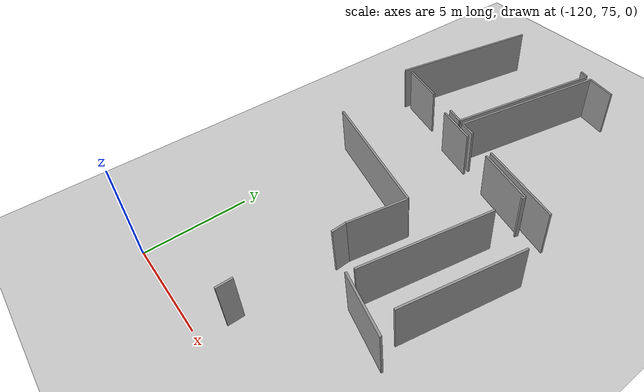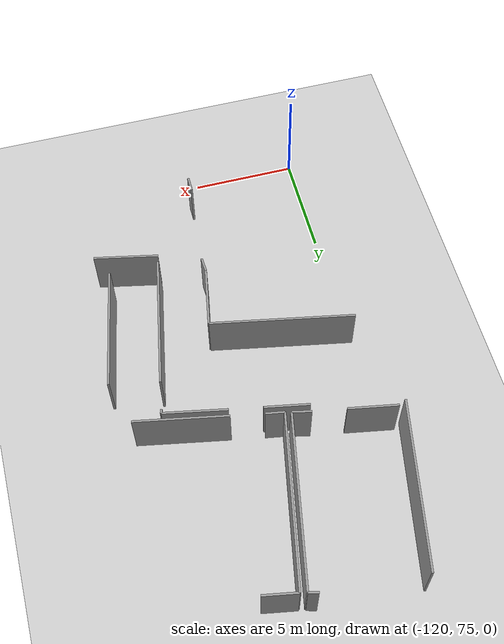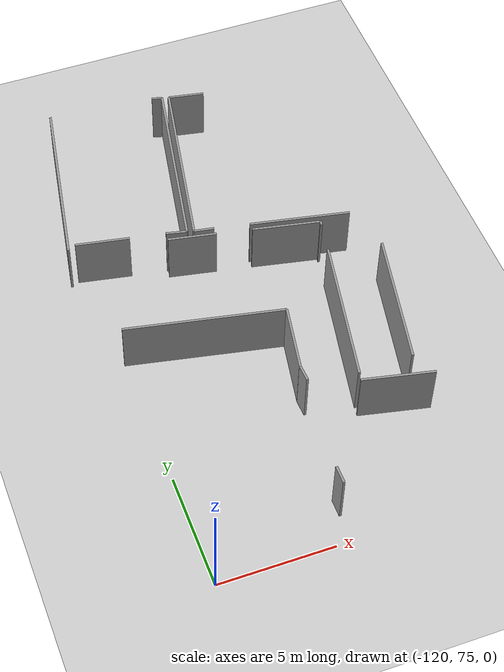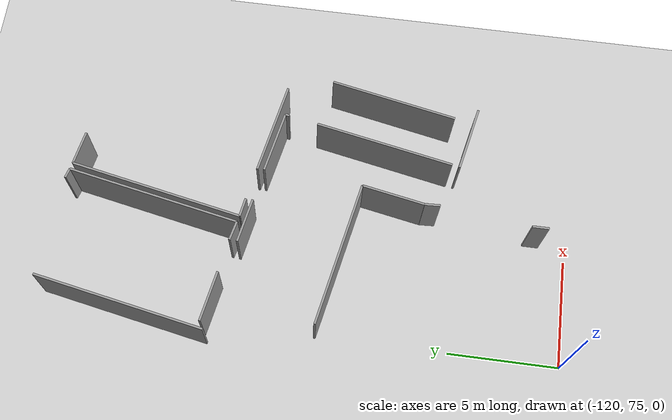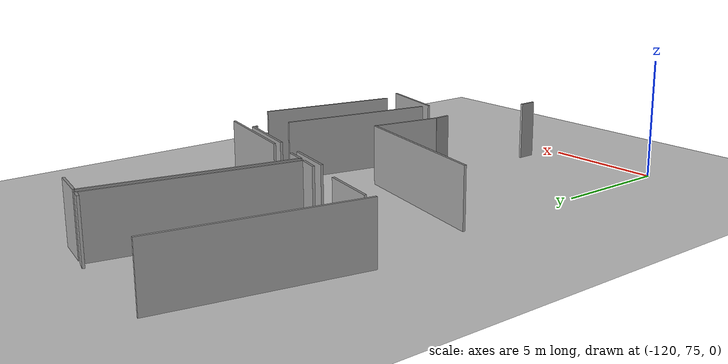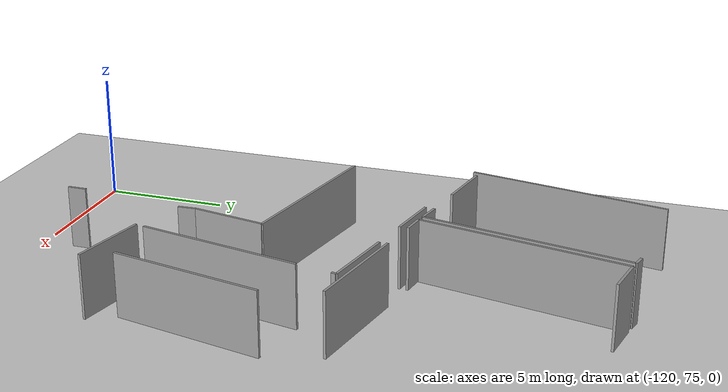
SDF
<sdf version="1.6">
 <world name="default">
  <model name="ground_plane">
   <static>1</static>
   <link name="link">
    <collision name="collision">
     <geometry><plane><normal>0 0 1</normal><size>100 100</size></plane></geometry>
     <surface><friction><ode><mu>100</mu><mu2>50</mu2></ode></friction></surface>
    </collision>
    <visual name="visual">
     <cast_shadows>0</cast_shadows>
     <geometry><plane><normal>0 0 1</normal><size>100 100</size></plane></geometry>
     <material>
      <script><uri>file://media/materials/scripts/gazebo.material</uri><name>Gazebo/Grey</name></script>
     </material>
    </visual>
   </link>
  </model>
  <model name="0510045922_A-40">
   <static>1</static>
   <link name="Wall_1">
    <collision name="Wall_1_Collision">
     <geometry><box><size>0.470537639431 0.1 2.5</size></box></geometry>
     <pose>0.235268819715 0 1.25 0 0 0</pose>
    </collision>
    <visual name="Wall_1_Visual">
     <pose>0.235268819715 0 1.25 0 0 0</pose>
     <geometry><box><size>0.470537639431 0.1 2.5</size></box></geometry>
     <material>
      <script><uri>file://media/materials/scripts/gazebo.material</uri><name>Gazebo/Grey</name></script>
      <ambient>1 1 1 1</ambient>
     </material>
    </visual>
    <pose>19.3935820042 -3.08300184279 0 0 0 -0.270293359605</pose>
   </link>
   <link name="Wall_2">
    <collision name="Wall_2_Collision">
     <geometry><box><size>8.09494399257 0.1 2.5</size></box></geometry>
     <pose>4.04747199628 0 1.25 0 0 0</pose>
    </collision>
    <visual name="Wall_2_Visual">
     <pose>4.04747199628 0 1.25 0 0 0</pose>
     <geometry><box><size>8.09494399257 0.1 2.5</size></box></geometry>
     <material>
      <script><uri>file://media/materials/scripts/gazebo.material</uri><name>Gazebo/Grey</name></script>
      <ambient>1 1 1 1</ambient>
     </material>
    </visual>
    <pose>19.8470356485 -3.20864205376 0 0 0 -1.76435669392</pose>
   </link>
   <link name="Wall_3">
    <collision name="Wall_3_Collision">
     <geometry><box><size>0.907823128029 0.1 2.5</size></box></geometry>
     <pose>0.453911564014 0 1.25 0 0 0</pose>
    </collision>
    <visual name="Wall_3_Visual">
     <pose>0.453911564014 0 1.25 0 0 0</pose>
     <geometry><box><size>0.907823128029 0.1 2.5</size></box></geometry>
     <material>
      <script><uri>file://media/materials/scripts/gazebo.material</uri><name>Gazebo/Grey</name></script>
      <ambient>1 1 1 1</ambient>
     </material>
    </visual>
    <pose>18.2899409036 -11.1524178687 0 0 0 2.91712323827</pose>
   </link>
   <link name="Wall_4">
    <collision name="Wall_4_Collision">
     <geometry><box><size>2.33775990232 0.1 2.5</size></box></geometry>
     <pose>1.16887995116 0 1.25 0 0 0</pose>
    </collision>
    <visual name="Wall_4_Visual">
     <pose>1.16887995116 0 1.25 0 0 0</pose>
     <geometry><box><size>2.33775990232 0.1 2.5</size></box></geometry>
     <material>
      <script><uri>file://media/materials/scripts/gazebo.material</uri><name>Gazebo/Grey</name></script>
      <ambient>1 1 1 1</ambient>
     </material>
    </visual>
    <pose>15.8671157146 -10.6791383364 0 0 0 2.9593371123</pose>
   </link>
   <link name="Wall_5">
    <collision name="Wall_5_Collision">
     <geometry><box><size>8.10260033233 0.1 2.5</size></box></geometry>
     <pose>4.05130016617 0 1.25 0 0 0</pose>
    </collision>
    <visual name="Wall_5_Visual">
     <pose>4.05130016617 0 1.25 0 0 0</pose>
     <geometry><box><size>8.10260033233 0.1 2.5</size></box></geometry>
     <material>
      <script><uri>file://media/materials/scripts/gazebo.material</uri><name>Gazebo/Grey</name></script>
      <ambient>1 1 1 1</ambient>
     </material>
    </visual>
    <pose>18.5746203215 -11.2279087501 0 0 0 1.37527901961</pose>
   </link>
   <link name="Wall_6">
    <collision name="Wall_6_Collision">
     <geometry><box><size>1.59272512414 0.1 2.5</size></box></geometry>
     <pose>0.796362562072 0 1.25 0 0 0</pose>
    </collision>
    <visual name="Wall_6_Visual">
     <pose>0.796362562072 0 1.25 0 0 0</pose>
     <geometry><box><size>1.59272512414 0.1 2.5</size></box></geometry>
     <material>
      <script><uri>file://media/materials/scripts/gazebo.material</uri><name>Gazebo/Grey</name></script>
      <ambient>1 1 1 1</ambient>
     </material>
    </visual>
    <pose>20.1487449959 -3.27968481922 0 0 0 -0.185220506513</pose>
   </link>
   <link name="Wall_10">
    <collision name="Wall_10_Collision">
     <geometry><box><size>4.35893871612 0.1 2.5</size></box></geometry>
     <pose>2.17946935806 0 1.25 0 0 0</pose>
    </collision>
    <visual name="Wall_10_Visual">
     <pose>2.17946935806 0 1.25 0 0 0</pose>
     <geometry><box><size>4.35893871612 0.1 2.5</size></box></geometry>
     <material>
      <script><uri>file://media/materials/scripts/gazebo.material</uri><name>Gazebo/Grey</name></script>
      <ambient>1 1 1 1</ambient>
     </material>
    </visual>
    <pose>25.2282391815 -12.509982843 0 0 0 2.94866854822</pose>
   </link>
   <link name="Wall_11">
    <collision name="Wall_11_Collision">
     <geometry><box><size>0.872309041186 0.1 2.5</size></box></geometry>
     <pose>0.436154520593 0 1.25 0 0 0</pose>
    </collision>
    <visual name="Wall_11_Visual">
     <pose>0.436154520593 0 1.25 0 0 0</pose>
     <geometry><box><size>0.872309041186 0.1 2.5</size></box></geometry>
     <material>
      <script><uri>file://media/materials/scripts/gazebo.material</uri><name>Gazebo/Grey</name></script>
      <ambient>1 1 1 1</ambient>
     </material>
    </visual>
    <pose>19.4342504925 -11.3760945542 0 0 0 2.97088714714</pose>
   </link>
   <link name="Wall_18">
    <collision name="Wall_18_Collision">
     <geometry><box><size>7.91513616514 0.1 2.5</size></box></geometry>
     <pose>3.95756808257 0 1.25 0 0 0</pose>
    </collision>
    <visual name="Wall_18_Visual">
     <pose>3.95756808257 0 1.25 0 0 0</pose>
     <geometry><box><size>7.91513616514 0.1 2.5</size></box></geometry>
     <material>
      <script><uri>file://media/materials/scripts/gazebo.material</uri><name>Gazebo/Grey</name></script>
      <ambient>1 1 1 1</ambient>
     </material>
    </visual>
    <pose>14.7067929084 -2.67207218657 0 0 0 -1.75873361991</pose>
   </link>
   <link name="Wall_20">
    <collision name="Wall_20_Collision">
     <geometry><box><size>2.09685204779 0.1 2.5</size></box></geometry>
     <pose>1.04842602389 0 1.25 0 0 0</pose>
    </collision>
    <visual name="Wall_20_Visual">
     <pose>1.04842602389 0 1.25 0 0 0</pose>
     <geometry><box><size>2.09685204779 0.1 2.5</size></box></geometry>
     <material>
      <script><uri>file://media/materials/scripts/gazebo.material</uri><name>Gazebo/Grey</name></script>
      <ambient>1 1 1 1</ambient>
     </material>
    </visual>
    <pose>17.3721039588 -11.2998411387 0 0 0 -0.188765861805</pose>
   </link>
   <link name="Wall_21">
    <collision name="Wall_21_Collision">
     <geometry><box><size>2.97330858779 0.1 2.5</size></box></geometry>
     <pose>1.48665429389 0 1.25 0 0 0</pose>
    </collision>
    <visual name="Wall_21_Visual">
     <pose>1.48665429389 0 1.25 0 0 0</pose>
     <geometry><box><size>2.97330858779 0.1 2.5</size></box></geometry>
     <material>
      <script><uri>file://media/materials/scripts/gazebo.material</uri><name>Gazebo/Grey</name></script>
      <ambient>1 1 1 1</ambient>
     </material>
    </visual>
    <pose>20.9537268857 -11.9868844125 0 0 0 -0.197211141524</pose>
   </link>
   <link name="Wall_22">
    <collision name="Wall_22_Collision">
     <geometry><box><size>0.196789795488 0.1 2.5</size></box></geometry>
     <pose>0.0983948977441 0 1.25 0 0 0</pose>
    </collision>
    <visual name="Wall_22_Visual">
     <pose>0.0983948977441 0 1.25 0 0 0</pose>
     <geometry><box><size>0.196789795488 0.1 2.5</size></box></geometry>
     <material>
      <script><uri>file://media/materials/scripts/gazebo.material</uri><name>Gazebo/Grey</name></script>
      <ambient>1 1 1 1</ambient>
     </material>
    </visual>
    <pose>23.869403317 -12.5694605071 0 0 0 -1.8267394628</pose>
   </link>
   <link name="Wall_23">
    <collision name="Wall_23_Collision">
     <geometry><box><size>6.4917122181 0.1 2.5</size></box></geometry>
     <pose>3.24585610905 0 1.25 0 0 0</pose>
    </collision>
    <visual name="Wall_23_Visual">
     <pose>3.24585610905 0 1.25 0 0 0</pose>
     <geometry><box><size>6.4917122181 0.1 2.5</size></box></geometry>
     <material>
      <script><uri>file://media/materials/scripts/gazebo.material</uri><name>Gazebo/Grey</name></script>
      <ambient>1 1 1 1</ambient>
     </material>
    </visual>
    <pose>23.5732858868 -14.10723772 0 0 0 -1.7641681961</pose>
   </link>
   <link name="Wall_24">
    <collision name="Wall_24_Collision">
     <geometry><box><size>0.710618603475 0.1 2.5</size></box></geometry>
     <pose>0.355309301738 0 1.25 0 0 0</pose>
    </collision>
    <visual name="Wall_24_Visual">
     <pose>0.355309301738 0 1.25 0 0 0</pose>
     <geometry><box><size>0.710618603475 0.1 2.5</size></box></geometry>
     <material>
      <script><uri>file://media/materials/scripts/gazebo.material</uri><name>Gazebo/Grey</name></script>
      <ambient>1 1 1 1</ambient>
     </material>
    </visual>
    <pose>20.2529579971 -20.0989769333 0 0 0 1.61516389766</pose>
   </link>
   <link name="Wall_25">
    <collision name="Wall_25_Collision">
     <geometry><box><size>2.9279149752 0.1 2.5</size></box></geometry>
     <pose>1.4639574876 0 1.25 0 0 0</pose>
    </collision>
    <visual name="Wall_25_Visual">
     <pose>1.4639574876 0 1.25 0 0 0</pose>
     <geometry><box><size>2.9279149752 0.1 2.5</size></box></geometry>
     <material>
      <script><uri>file://media/materials/scripts/gazebo.material</uri><name>Gazebo/Grey</name></script>
      <ambient>1 1 1 1</ambient>
     </material>
    </visual>
    <pose>20.2214399187 -19.3890576349 0 0 0 1.38410983943</pose>
   </link>
   <link name="Wall_26">
    <collision name="Wall_26_Collision">
     <geometry><box><size>6.8242271529 0.1 2.5</size></box></geometry>
     <pose>3.41211357645 0 1.25 0 0 0</pose>
    </collision>
    <visual name="Wall_26_Visual">
     <pose>3.41211357645 0 1.25 0 0 0</pose>
     <geometry><box><size>6.8242271529 0.1 2.5</size></box></geometry>
     <material>
      <script><uri>file://media/materials/scripts/gazebo.material</uri><name>Gazebo/Grey</name></script>
      <ambient>1 1 1 1</ambient>
     </material>
    </visual>
    <pose>20.7648725933 -16.5120162674 0 0 0 2.94709703375</pose>
   </link>
   <link name="Wall_34">
    <collision name="Wall_34_Collision">
     <geometry><box><size>5.95195158173 0.1 2.5</size></box></geometry>
     <pose>2.97597579086 0 1.25 0 0 0</pose>
    </collision>
    <visual name="Wall_34_Visual">
     <pose>2.97597579086 0 1.25 0 0 0</pose>
     <geometry><box><size>5.95195158173 0.1 2.5</size></box></geometry>
     <material>
      <script><uri>file://media/materials/scripts/gazebo.material</uri><name>Gazebo/Grey</name></script>
      <ambient>1 1 1 1</ambient>
     </material>
    </visual>
    <pose>24.6873482875 -20.4095825126 0 0 0 1.37389490012</pose>
   </link>
   <link name="Wall_279">
    <collision name="Wall_279_Collision">
     <geometry><box><size>0.755162991676 0.1 2.5</size></box></geometry>
     <pose>0.377581495838 0 1.25 0 0 0</pose>
    </collision>
    <visual name="Wall_279_Visual">
     <pose>0.377581495838 0 1.25 0 0 0</pose>
     <geometry><box><size>0.755162991676 0.1 2.5</size></box></geometry>
     <material>
      <script><uri>file://media/materials/scripts/gazebo.material</uri><name>Gazebo/Grey</name></script>
      <ambient>1 1 1 1</ambient>
     </material>
    </visual>
    <pose>19.7860329161 -24.2507212302 0 0 0 -1.57079632679</pose>
   </link>
   <link name="Wall_480">
    <collision name="Wall_480_Collision">
     <geometry><box><size>3.08202286213 0.1 2.5</size></box></geometry>
     <pose>1.54101143106 0 1.25 0 0 0</pose>
    </collision>
    <visual name="Wall_480_Visual">
     <pose>1.54101143106 0 1.25 0 0 0</pose>
     <geometry><box><size>3.08202286213 0.1 2.5</size></box></geometry>
     <material>
      <script><uri>file://media/materials/scripts/gazebo.material</uri><name>Gazebo/Grey</name></script>
      <ambient>1 1 1 1</ambient>
     </material>
    </visual>
    <pose>22.2373260469 -20.8132172587 0 0 0 -0.21120853396</pose>
   </link>
   <pose>-134.15 101.210036856 0 0 0 0</pose>
  </model>
 </world>
</sdf>
